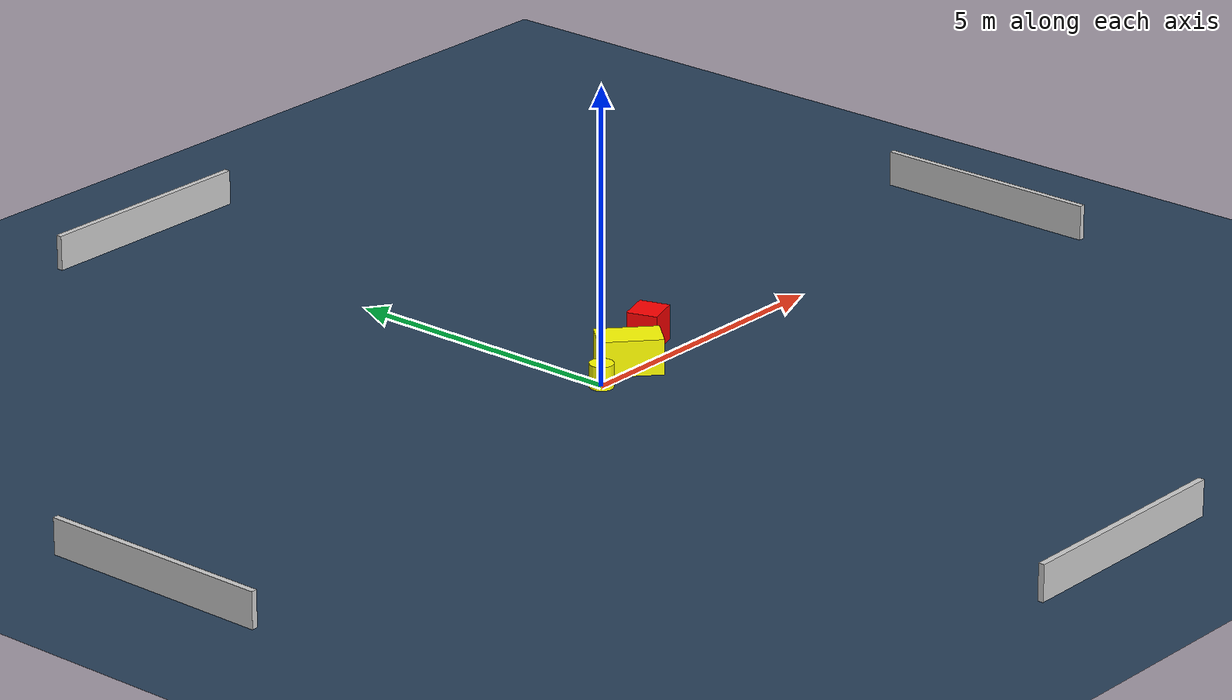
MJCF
<?xml version="1.0" ?>
<mujoco model="generated_environment">
  <option timestep="0.01" integrator="RK4" cone="elliptic"/>
  <default>
    <geom density="1"/>
  </default>
  <asset>
    <texture builtin="gradient" height="3072" name="skybox" rgb1="0.3 0.5 0.7" rgb2="0 0 0" type="skybox" width="512"/>
    <texture builtin="checker" height="300" name="groundplane" rgb1="0.2 0.3 0.4" rgb2="0.1 0.2 0.3" type="2d" width="300"/>
    <material name="groundplane" reflectance="0.2" texrepeat="5 5" texture="groundplane"/>
  </asset>
  <worldbody>
    <light dir="0 0 -1" directional="true" pos="0 0 1.5"/>
    <geom condim="3" friction="0.5 0.005 0.001" material="groundplane" name="floor" pos="0 0 0" size="0 0 0.05" type="plane"/>
    <body name="walls">
      <geom name="wall_1" condim="4" pos="-10.0 0.0 0.3" rgba="0.800000011920929 0.800000011920929 0.800000011920929 1.0" size="0.05 2.0 0.3" type="box"/>
      <geom name="wall_2" condim="4" pos="10.0 0.0 0.3" rgba="0.800000011920929 0.800000011920929 0.800000011920929 1.0" size="0.05 2.0 0.3" type="box"/>
      <geom name="wall_3" condim="4" pos="0.0 -10.0 0.3" rgba="0.800000011920929 0.800000011920929 0.800000011920929 1.0" size="2.0 0.05 0.3" type="box"/>
      <geom name="wall_4" condim="4" pos="0.0 10.0 0.3" rgba="0.800000011920929 0.800000011920929 0.800000011920929 1.0" size="2.0 0.05 0.3" type="box"/>
    </body>
    <body name="robot">
      <joint name="joint_x" type="slide" pos="0 0 0" axis="1 0 0"/>
      <joint name="joint_y" type="slide" pos="0 0 0" axis="0 1 0"/>
      <geom name="robot" type="cylinder" pos="0.0 0.0 0.2" size="0.2 0.2 0.0" mass="5.0" friction="1.0 0.005 0.0001" condim="4" rgba="1.0 1.0 0.0 1.0"/>
    </body>
    <body name="obstacle_1_movable">
      <geom name="obstacle_1_movable" condim="4" pos="0.8074901452140488 0.12579609193711652 0.3" euler="0 0 227.8521257799643" friction="0.0 0.005 0.001" rgba="1.0 1.0 0.0 1.0" size="0.29177517820690796 0.5287199396362285 0.3" type="box" mass="0.1"/>
      <joint type="free"/>
    </body>
    <body name="obstacle_2_static">
      <geom name="obstacle_2_static" condim="4" pos="1.8311227970874047 0.5826770975222422 0.3" euler="0 0 197.82589334283415" friction="0.0 0.005 0.001" rgba="1.0 0.0 0.0 1.0" size="0.28491106431438895 0.2601994380626999 0.3" type="box"/>
    </body>
  </worldbody>
  <actuator>
    <motor name="actuator_x" joint="joint_x" gear="1" ctrlrange="-1 1"/>
    <motor name="actuator_y" joint="joint_y" gear="1" ctrlrange="-1 1"/>
  </actuator>
</mujoco>
